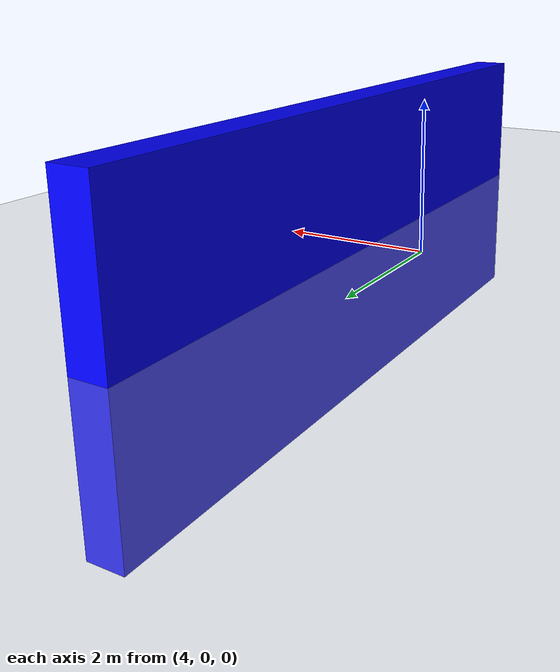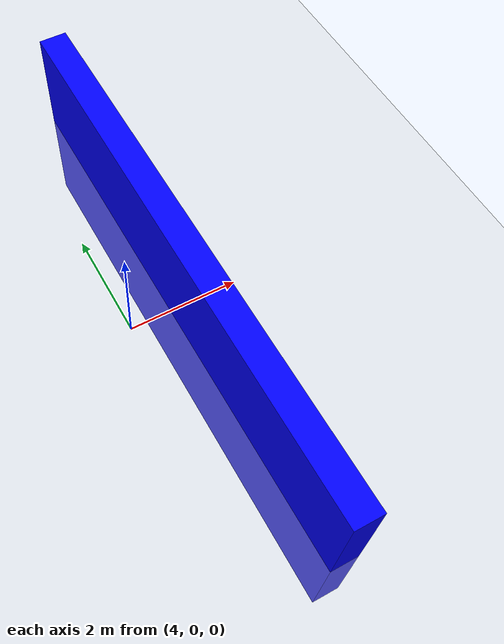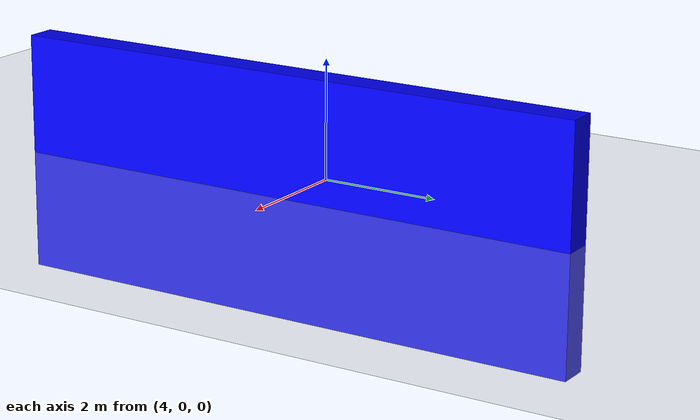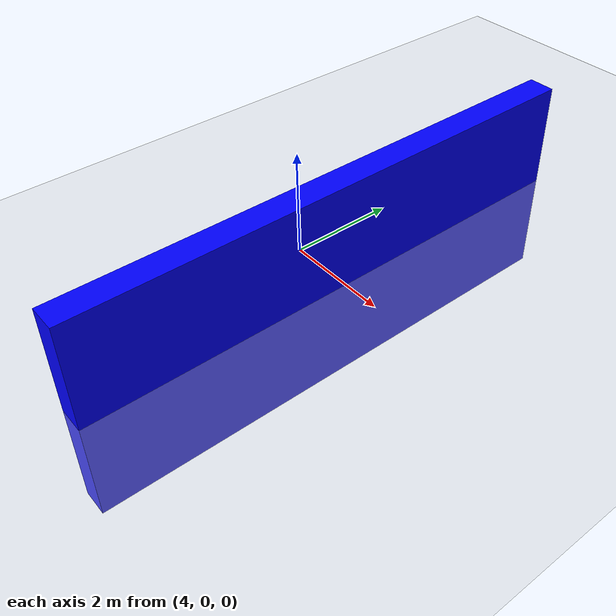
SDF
<?xml version="1.0" ?>
<sdf version="1.10">
    <world name="differential_world">
        <physics name="1ms" type="ignored">
            <max_step_size>0.001</max_step_size>
            <real_time_factor>1.0</real_time_factor>
        </physics>
        <plugin
            filename="gz-sim-physics-system"
            name="gz::sim::systems::Physics">
        </plugin>
        <plugin
            filename="gz-sim-user-commands-system"
            name="gz::sim::systems::UserCommands">
        </plugin>
        <plugin
            filename="gz-sim-scene-broadcaster-system"
            name="gz::sim::systems::SceneBroadcaster">
        </plugin>
        <plugin
            filename="gz-sim-imu-system"
            name="gz::sim::systems::Imu"
        ></plugin>
        <plugin
            filename="gz-sim-sensors-system"
            name="gz::sim::systems::Sensors">
            <render_engine>ogre2</render_engine>
        </plugin>
        <plugin
            filename="gz-sim-contact-system"
            name="gz::sim::systems::Contact">
        </plugin>
        <plugin
            filename="gz-sim-imu-system"
            name="gz::sim::systems::Imu">
        </plugin>

        <light type="directional" name="sun">
            <cast_shadows>true</cast_shadows>
            <pose>0 0 10 0 0 0</pose>
            <diffuse>0.8 0.8 0.8 1</diffuse>
            <specular>0.2 0.2 0.2 1</specular>
            <attenuation>
                <range>1000</range>
                <constant>0.9</constant>
                <linear>0.01</linear>
                <quadratic>0.001</quadratic>
            </attenuation>
            <direction>-0.5 0.1 -0.9</direction>
        </light>

        <model name="ground_plane">
            <static>true</static>
            <link name="link">
                <collision name="collision">
                <geometry>
                    <plane>
                    <normal>0 0 1</normal>
                    </plane>
                </geometry>
                </collision>
                <visual name="visual">
                <geometry>
                    <plane>
                    <normal>0 0 1</normal>
                    <size>100 100</size>
                    </plane>
                </geometry>
                <material>
                    <ambient>0.8 0.8 0.8 1</ambient>
                    <diffuse>0.8 0.8 0.8 1</diffuse>
                    <specular>0.8 0.8 0.8 1</specular>
                </material>
                </visual>
            </link>

        </model>

        <model name="wall">
            <static>true</static>
            <pose>5 0 0 0 0 0</pose>
            <link name="box">
                <visual name="visual">
                    <geometry>
                        <box>
                            <size>0.5 10 4</size>
                        </box>
                    </geometry>
                    <material>
                        <ambient>0.0 0.0 1.0 1</ambient>
                        <diffuse>0.0 0.0 1.0 1</diffuse>
                        <specular>0.0 0.0 1.0 1</specular>
                    </material>
                </visual>
                <collision name="collision">
                    <geometry>
                        <box>
                            <size>0.5 10 0.5</size>
                        </box>
                    </geometry>
                </collision>
                <sensor name="contact_sensor" type="contact">
                    <contact>
                        <collision>collision</collision>
                    </contact>
                </sensor>
            </link>
            <plugin filename="gz-sim-touchplugin-system"
                    name="gz::sim::systems::TouchPlugin">
                <target>vehicle_blue</target>
                <namespace>wall</namespace>
                <time>0.001</time>
                <enabled>true</enabled>
            </plugin>

        </model>
    </world>
</sdf>
